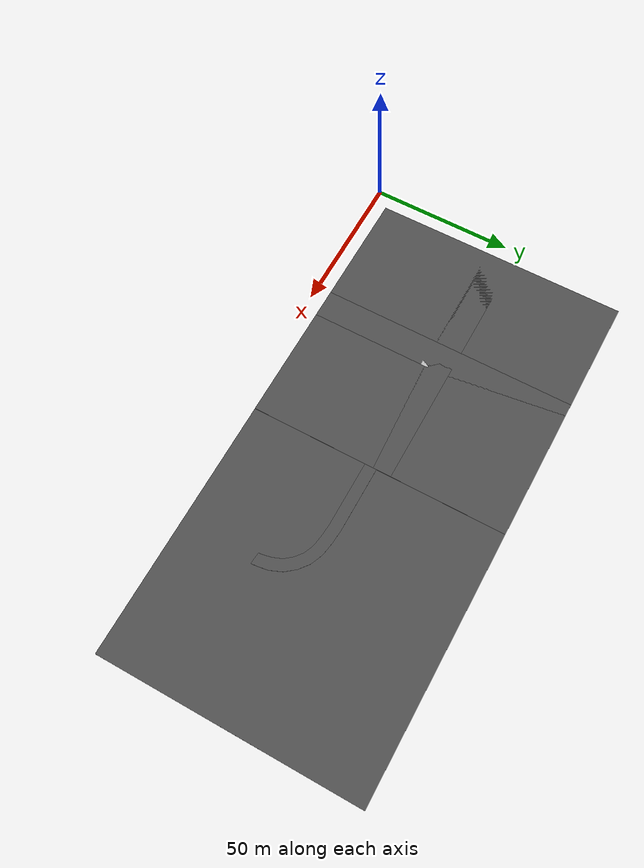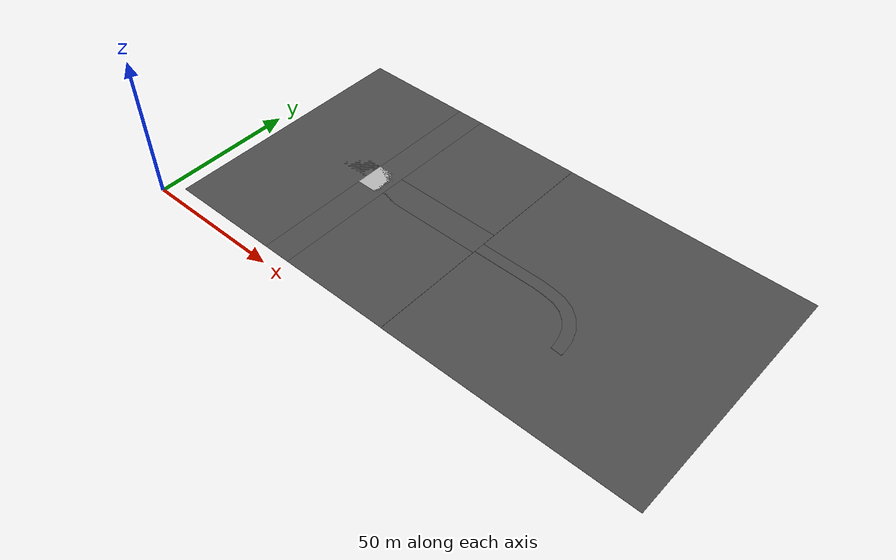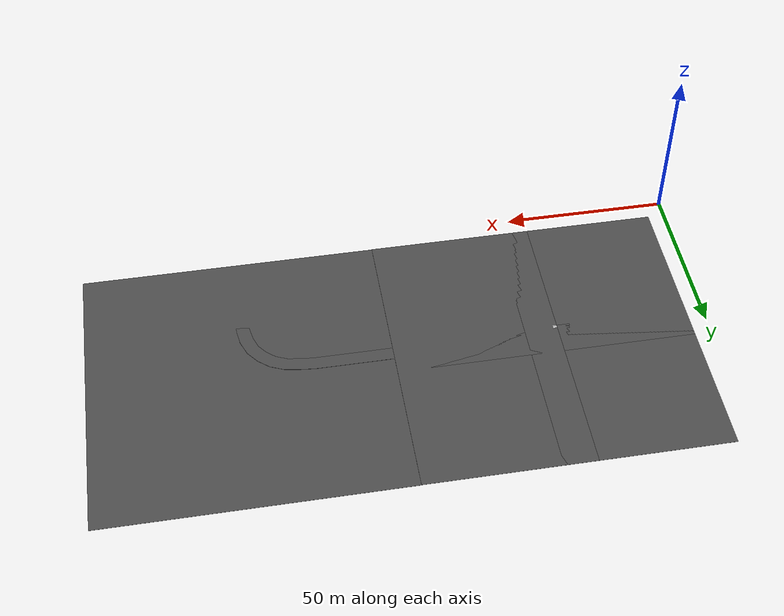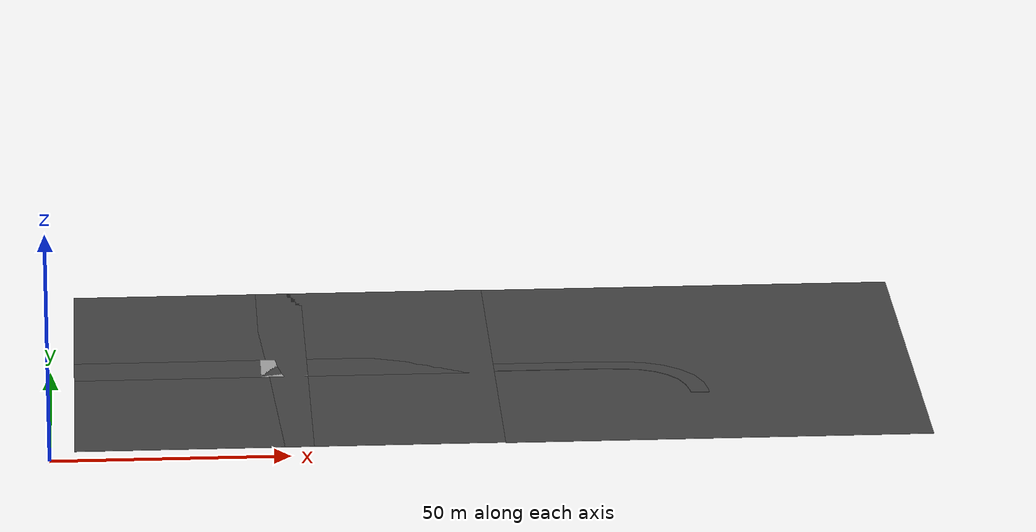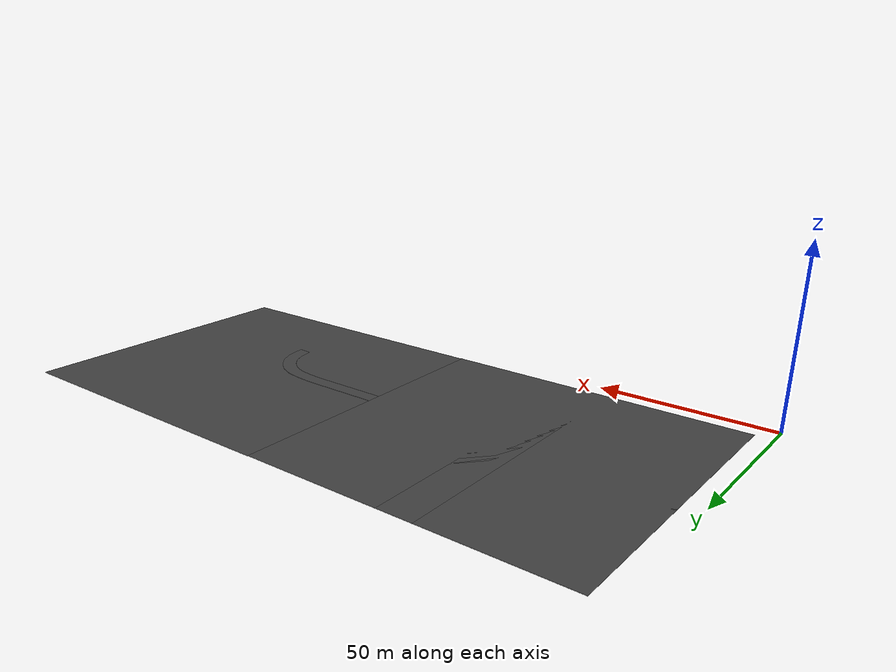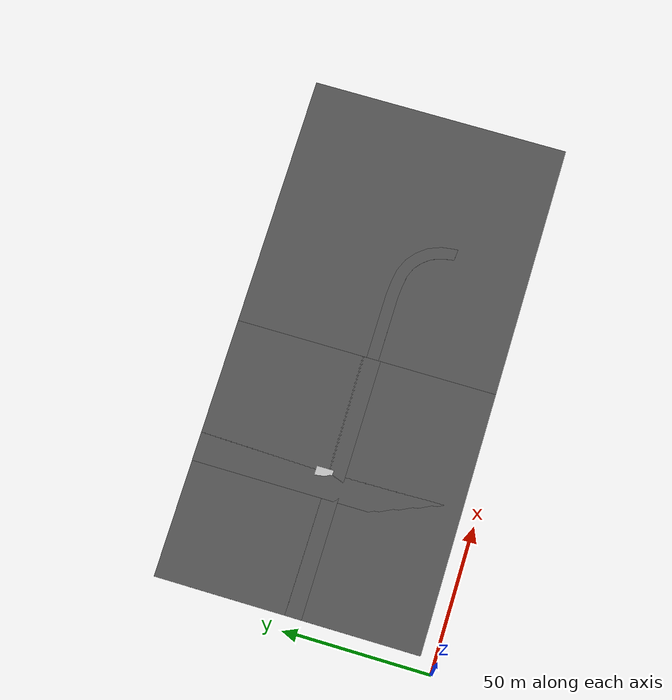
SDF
<sdf version="1.5">
 <world name="default">
  <light name="sun" type="directional">
   <pose>0 0 10 0 -0 0</pose>
   <diffuse>0.8 0.8 0.8 1</diffuse>
   <specular>0.2 0.2 0.2 1</specular>
   <attenuation>
    <range>1000</range>
    <constant>0.9</constant>
    <linear>0.01</linear>
    <quadratic>0.001</quadratic>
   </attenuation>
   <direction>-0.5 0.1 -0.9</direction>
  </light>
  <scene>
   <sky><clouds><speed>5</speed></clouds></sky>
   <ambient>0.4 0.4 0.4 1</ambient>
   <background>0.7 0.7 0.7 1</background>
   <shadows>1</shadows>
  </scene>
  <model name="intersection_1_1">
   <pose>50 50 0 0 -0 0</pose>
   <static>1</static>
   <link name="link">
    <collision name="collision"><geometry><box><size>10 10 1e-06</size></box></geometry></collision>
    <visual name="visual">
     <cast_shadows>0</cast_shadows>
     <geometry><box><size>10 10 0.1</size></box></geometry>
     <material>
      <script>
       <uri>models/intersection/materials/scripts</uri>
       <uri>models/intersection/materials/textures</uri>
       <name>intersection</name>
      </script>
     </material>
    </visual>
   </link>
  </model>
  <physics name="default_physics" default="0" type="ode">
   <max_step_size>0.001</max_step_size>
   <real_time_factor>1</real_time_factor>
   <real_time_update_rate>1000</real_time_update_rate>
   <gravity>0 0 -9.8</gravity>
   <magnetic_field>6e-06 2.3e-05 -4.2e-05</magnetic_field>
  </physics>
  <audio><device>default</device></audio>
  <spherical_coordinates>
   <surface_model>EARTH_WGS84</surface_model>
   <latitude_deg>0</latitude_deg>
   <longitude_deg>0</longitude_deg>
   <elevation>0</elevation>
   <heading_deg>0</heading_deg>
  </spherical_coordinates>
  <model name="asphalt_plane">
   <static>1</static>
   <link name="link">
    <collision name="collision"><geometry><box><size>90 90 0.1</size></box></geometry></collision>
    <visual name="visual">
     <cast_shadows>0</cast_shadows>
     <geometry><box><size>90 90 0.1</size></box></geometry>
     <material>
      <script>
       <uri>model://asphalt_plane/materials/scripts</uri>
       <uri>model://asphalt_plane/materials/textures</uri>
       <name>vrc/asphalt</name>
      </script>
     </material>
    </visual>
   </link>
   <pose>50 50 0 0 -0 0</pose>
  </model>
  <model name="comps_road">
   <static>1</static>
   <link name="link">
    <collision name="collision"><geometry><box><size>90 10 0.1</size></box></geometry></collision>
    <visual name="visual">
     <cast_shadows>0</cast_shadows>
     <geometry><box><size>90 10 0.1</size></box></geometry>
     <material>
      <script>
       <uri>model://comps_road/materials/scripts</uri>
       <uri>model://comps_road/materials/textures</uri>
       <name>comps_road</name>
      </script>
     </material>
    </visual>
   </link>
   <pose>50 50 0 0 -0 1.5707</pose>
  </model>
  <model name="comps_road_0">
   <static>1</static>
   <link name="link">
    <collision name="collision"><geometry><box><size>90 10 0.1</size></box></geometry></collision>
    <visual name="visual">
     <cast_shadows>0</cast_shadows>
     <geometry><box><size>90 10 0.1</size></box></geometry>
     <material>
      <script>
       <uri>model://comps_road/materials/scripts</uri>
       <uri>model://comps_road/materials/textures</uri>
       <name>comps_road</name>
      </script>
     </material>
    </visual>
   </link>
   <pose>50 50 0 0 -0 0</pose>
  </model>
  <model name="curved_road_3">
   <static>1</static>
   <link name="link">
    <collision name="collision">
     <geometry><mesh><uri>models/curved_road/curved_road.dae</uri><scale>3 3 0.5</scale></mesh></geometry>
    </collision>
    <visual name="visual">
     <cast_shadows>0</cast_shadows>
     <geometry><mesh><uri>models/curved_road/curved_road.dae</uri><scale>3 3 0.5</scale></mesh></geometry>
     <material>
      <script>
       <uri>models/curved_road/materials/scripts</uri>
       <uri>models/curved_road/materials/textures</uri>
       <name>curved_road</name>
      </script>
     </material>
    </visual>
   </link>
   <pose>118 47 0 0 -0 0</pose>
  </model>
  <model name="asphalt_plane_0">
   <static>1</static>
   <link name="link">
    <collision name="collision"><geometry><box><size>90 90 0.1</size></box></geometry></collision>
    <visual name="visual">
     <cast_shadows>0</cast_shadows>
     <geometry><box><size>90 90 0.1</size></box></geometry>
     <material>
      <script>
       <uri>model://asphalt_plane/materials/scripts</uri>
       <uri>model://asphalt_plane/materials/textures</uri>
       <name>vrc/asphalt</name>
      </script>
     </material>
    </visual>
   </link>
   <pose>140 50 -0.1 0 -0 0</pose>
  </model>
 </world>
</sdf>
